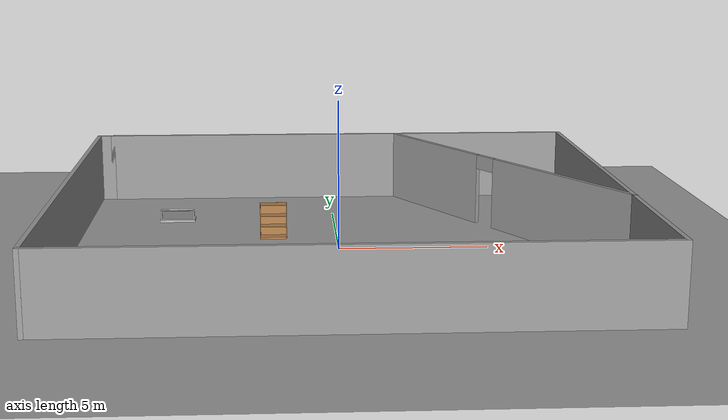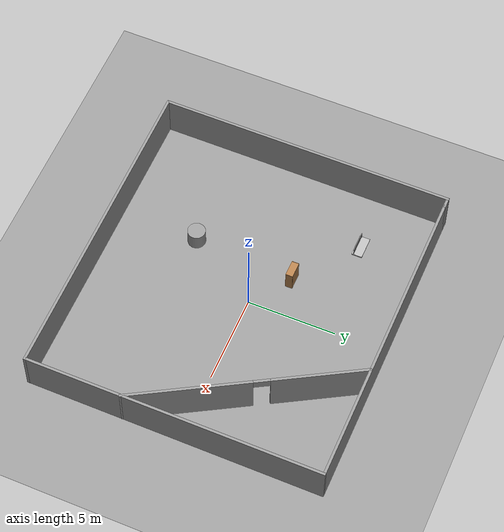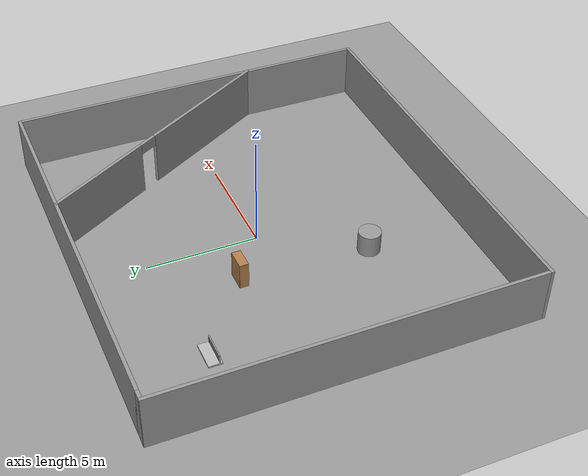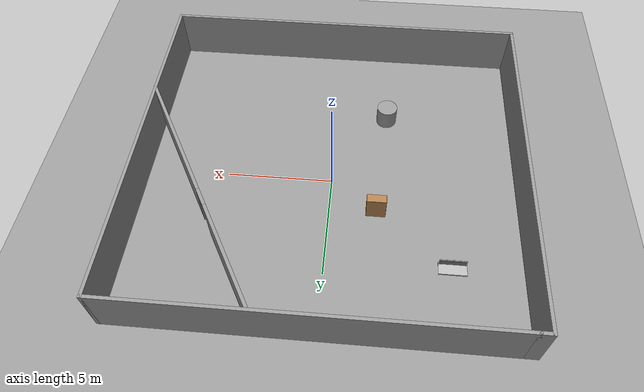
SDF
<sdf version="1.6">
 <world name="default">
  <model name="bookshelf">
   <static>1</static>
   <link name="link">
    <inertial><mass>1</mass></inertial>
    <collision name="back">
     <pose>0 0.005 0.6 0 -0 0</pose>
     <geometry><box><size>0.9 0.01 1.2</size></box></geometry>
    </collision>
    <visual name="visual1">
     <pose>0 0.005 0.6 0 -0 0</pose>
     <geometry><box><size>0.9 0.01 1.2</size></box></geometry>
     <material>
      <script><uri>file://media/materials/scripts/gazebo.material</uri><name>Gazebo/Wood</name></script>
     </material>
    </visual>
    <collision name="left_side">
     <pose>0.45 -0.195 0.6 0 -0 0</pose>
     <geometry><box><size>0.02 0.4 1.2</size></box></geometry>
    </collision>
    <visual name="visual2">
     <pose>0.45 -0.195 0.6 0 -0 0</pose>
     <geometry><box><size>0.02 0.4 1.2</size></box></geometry>
     <material>
      <script><uri>file://media/materials/scripts/gazebo.material</uri><name>Gazebo/Wood</name></script>
     </material>
    </visual>
    <collision name="right_side">
     <pose>-0.45 -0.195 0.6 0 -0 0</pose>
     <geometry><box><size>0.02 0.4 1.2</size></box></geometry>
    </collision>
    <visual name="visual3">
     <pose>-0.45 -0.195 0.6 0 -0 0</pose>
     <geometry><box><size>0.02 0.4 1.2</size></box></geometry>
     <material>
      <script><uri>file://media/materials/scripts/gazebo.material</uri><name>Gazebo/Wood</name></script>
     </material>
    </visual>
    <collision name="bottom">
     <pose>0 -0.195 0.03 0 -0 0</pose>
     <geometry><box><size>0.88 0.4 0.06</size></box></geometry>
    </collision>
    <visual name="visual4">
     <pose>0 -0.195 0.03 0 -0 0</pose>
     <geometry><box><size>0.88 0.4 0.06</size></box></geometry>
     <material>
      <script><uri>file://media/materials/scripts/gazebo.material</uri><name>Gazebo/Wood</name></script>
     </material>
    </visual>
    <collision name="top">
     <pose>0 -0.195 1.19 0 -0 0</pose>
     <geometry><box><size>0.88 0.4 0.02</size></box></geometry>
    </collision>
    <visual name="visual5">
     <pose>0 -0.195 1.19 0 -0 0</pose>
     <geometry><box><size>0.88 0.4 0.02</size></box></geometry>
     <material>
      <script><uri>file://media/materials/scripts/gazebo.material</uri><name>Gazebo/Wood</name></script>
     </material>
    </visual>
    <collision name="low_shelf">
     <pose>0 -0.195 0.43 0 -0 0</pose>
     <geometry><box><size>0.88 0.4 0.02</size></box></geometry>
    </collision>
    <visual name="visual6">
     <pose>0 -0.195 0.43 0 -0 0</pose>
     <geometry><box><size>0.88 0.4 0.02</size></box></geometry>
     <material>
      <script><uri>file://media/materials/scripts/gazebo.material</uri><name>Gazebo/Wood</name></script>
     </material>
    </visual>
    <collision name="high_shelf">
     <pose>0 -0.195 0.8 0 -0 0</pose>
     <geometry><box><size>0.88 0.4 0.02</size></box></geometry>
    </collision>
    <visual name="visual7">
     <pose>0 -0.195 0.8 0 -0 0</pose>
     <geometry><box><size>0.88 0.4 0.02</size></box></geometry>
     <material>
      <script><uri>file://media/materials/scripts/gazebo.material</uri><name>Gazebo/Wood</name></script>
     </material>
    </visual>
    <velocity_decay><linear>0</linear><angular>0</angular></velocity_decay>
   </link>
   <pose>-2.17453 1.82089 0 0 -0 0</pose>
  </model>
  <model name="ground_plane_0">
   <static>1</static>
   <link name="link">
    <collision name="collision">
     <geometry><plane><normal>0 0 1</normal><size>100 100</size></plane></geometry>
     <surface><friction><ode><mu>100</mu><mu2>50</mu2></ode></friction></surface>
    </collision>
    <visual name="visual">
     <cast_shadows>0</cast_shadows>
     <geometry><plane><normal>0 0 1</normal><size>100 100</size></plane></geometry>
     <material>
      <script><uri>file://media/materials/scripts/gazebo.material</uri><name>Gazebo/Grey</name></script>
     </material>
    </visual>
    <velocity_decay><linear>0</linear><angular>0</angular></velocity_decay>
   </link>
   <pose>0.497681 0 0 0 -0 0</pose>
  </model>
  <model name="unit_cylinder_1">
   <pose>-2.50226 -4.15205 0.49912 0 -0 0</pose>
   <link name="link">
    <inertial>
     <mass>1</mass>
     <inertia><ixx>1</ixx><ixy>0</ixy><ixz>0</ixz><iyy>1</iyy><iyz>0</iyz><izz>1</izz></inertia>
    </inertial>
    <collision name="collision">
     <geometry><cylinder><radius>0.5</radius><length>1</length></cylinder></geometry>
    </collision>
    <visual name="visual">
     <geometry><cylinder><radius>0.5</radius><length>1</length></cylinder></geometry>
     <material>
      <script><uri>file://media/materials/scripts/gazebo.material</uri><name>Gazebo/Grey</name></script>
     </material>
    </visual>
    <velocity_decay><linear>0</linear><angular>0</angular></velocity_decay>
   </link>
   <static>0</static>
  </model>
  <model name="Untitled">
   <pose>0.088338 -0.370511 0 0 -0 0</pose>
   <link name="Wall_10">
    <collision name="Wall_10_Collision">
     <geometry><box><size>18 0.15 2.5</size></box></geometry>
     <pose>0 0 1.25 0 -0 0</pose>
    </collision>
    <visual name="Wall_10_Visual">
     <pose>0 0 1.25 0 -0 0</pose>
     <geometry><box><size>18 0.15 2.5</size></box></geometry>
     <material>
      <script><uri>file://media/materials/scripts/gazebo.material</uri><name>Gazebo/Grey</name></script>
      <ambient>1 1 1 1</ambient>
     </material>
    </visual>
    <pose>-0.022117 -8.3 0 0 -0 3.14159</pose>
   </link>
   <link name="Wall_11">
    <collision name="Wall_11_Collision">
     <geometry><box><size>16.75 0.15 2.5</size></box></geometry>
     <pose>0 0 1.25 0 -0 0</pose>
    </collision>
    <visual name="Wall_11_Visual">
     <pose>0 0 1.25 0 -0 0</pose>
     <geometry><box><size>16.75 0.15 2.5</size></box></geometry>
     <material>
      <script><uri>file://media/materials/scripts/gazebo.material</uri><name>Gazebo/Grey</name></script>
      <ambient>1 1 1 1</ambient>
     </material>
    </visual>
    <pose>-8.94712 0 0 0 -0 1.5708</pose>
   </link>
   <link name="Wall_12">
    <collision name="Wall_12_Collision">
     <geometry><box><size>0.65 0.15 2.5</size></box></geometry>
     <pose>0 0 1.25 0 -0 0</pose>
    </collision>
    <visual name="Wall_12_Visual">
     <pose>0 0 1.25 0 -0 0</pose>
     <geometry><box><size>0.65 0.15 2.5</size></box></geometry>
     <material>
      <script><uri>file://media/materials/scripts/gazebo.material</uri><name>Gazebo/Grey</name></script>
      <ambient>1 1 1 1</ambient>
     </material>
    </visual>
    <pose>-8.69712 8.3 0 0 -0 0</pose>
   </link>
   <link name="Wall_14">
    <pose>5.70717 2.69556 0 0 0 -1.0472</pose>
    <visual name="Wall_14_Visual_0">
     <pose>-3.8832 0 1.25 0 -0 0</pose>
     <geometry><box><size>5.23359 0.15 2.5</size></box></geometry>
     <material>
      <script><uri>file://media/materials/scripts/gazebo.material</uri><name>Gazebo/Grey</name></script>
      <ambient>1 1 1 1</ambient>
     </material>
    </visual>
    <collision name="Wall_14_Collision_0">
     <geometry><box><size>5.23359 0.15 2.5</size></box></geometry>
     <pose>-3.8832 0 1.25 0 -0 0</pose>
    </collision>
    <visual name="Wall_14_Visual_1">
     <pose>3.06679 0 1.25 0 -0 0</pose>
     <geometry><box><size>6.86641 0.15 2.5</size></box></geometry>
     <material>
      <script><uri>file://media/materials/scripts/gazebo.material</uri><name>Gazebo/Grey</name></script>
      <ambient>1 1 1 1</ambient>
     </material>
    </visual>
    <collision name="Wall_14_Collision_1">
     <geometry><box><size>6.86641 0.15 2.5</size></box></geometry>
     <pose>3.06679 0 1.25 0 -0 0</pose>
    </collision>
    <visual name="Wall_14_Visual_2">
     <pose>-0.816409 0 2.25 0 -0 0</pose>
     <geometry><box><size>0.9 0.15 0.5</size></box></geometry>
     <material>
      <script><uri>file://media/materials/scripts/gazebo.material</uri><name>Gazebo/Grey</name></script>
      <ambient>1 1 1 1</ambient>
     </material>
    </visual>
    <collision name="Wall_14_Collision_2">
     <geometry><box><size>0.9 0.15 0.5</size></box></geometry>
     <pose>-0.816409 0 2.25 0 -0 0</pose>
    </collision>
   </link>
   <link name="Wall_8">
    <collision name="Wall_8_Collision">
     <geometry><box><size>17.5 0.15 2.5</size></box></geometry>
     <pose>0 0 1.25 0 -0 0</pose>
    </collision>
    <visual name="Wall_8_Visual">
     <pose>0 0 1.25 0 -0 0</pose>
     <geometry><box><size>17.5 0.15 2.5</size></box></geometry>
     <material>
      <script><uri>file://media/materials/scripts/gazebo.material</uri><name>Gazebo/Grey</name></script>
      <ambient>1 1 1 1</ambient>
     </material>
    </visual>
    <pose>0.227883 8.3 0 0 -0 0</pose>
   </link>
   <link name="Wall_9">
    <collision name="Wall_9_Collision">
     <geometry><box><size>16.75 0.15 2.5</size></box></geometry>
     <pose>0 0 1.25 0 -0 0</pose>
    </collision>
    <visual name="Wall_9_Visual">
     <pose>0 0 1.25 0 -0 0</pose>
     <geometry><box><size>16.75 0.15 2.5</size></box></geometry>
     <material>
      <script><uri>file://media/materials/scripts/gazebo.material</uri><name>Gazebo/Grey</name></script>
      <ambient>1 1 1 1</ambient>
     </material>
    </visual>
    <pose>8.90288 0 0 0 0 -1.5708</pose>
   </link>
   <static>1</static>
  </model>
  <model name="frc2016_lowbar">
   <link name="base">
    <inertial>
     <mass>50</mass>
     <inertia>
      <ixx>0.035543</ixx>
      <ixy>0</ixy>
      <ixz>0</ixz>
      <iyy>0.134412</iyy>
      <iyz>0</iyz>
      <izz>0.165376</izz>
     </inertia>
    </inertial>
    <visual name="platform">
     <pose>0 0 0.039065 0 -0 0</pose>
     <geometry><box><size>1.26 0.5996 0.07813</size></box></geometry>
    </visual>
    <collision name="platform">
     <pose>0 0 0.039065 0 -0 0</pose>
     <geometry><box><size>1.27 0.6096 0.07813</size></box></geometry>
    </collision>
    <visual name="right_column">
     <pose>-0.57845 -0.18464 0.26863 0 -0 0</pose>
     <geometry><cylinder><radius>0.0254</radius><length>0.381</length></cylinder></geometry>
    </visual>
    <collision name="right_column">
     <pose>-0.57845 -0.18464 0.26863 0 -0 0</pose>
     <geometry><cylinder><radius>0.0254</radius><length>0.381</length></cylinder></geometry>
    </collision>
    <visual name="left_column">
     <pose>0.57845 -0.18464 0.26863 0 -0 0</pose>
     <geometry><cylinder><radius>0.0254</radius><length>0.381</length></cylinder></geometry>
    </visual>
    <collision name="left_column">
     <pose>0.57845 -0.18464 0.26863 0 -0 0</pose>
     <geometry><cylinder><radius>0.0254</radius><length>0.381</length></cylinder></geometry>
    </collision>
    <visual name="horizontal">
     <pose>0 -0.18464 0.43556 0 1.5707 0</pose>
     <geometry><cylinder><radius>0.0254</radius><length>1.2018</length></cylinder></geometry>
    </visual>
    <collision name="horizontal">
     <pose>0 -0.18464 0.43556 0 1.5707 0</pose>
     <geometry><cylinder><radius>0.0254</radius><length>1.2018</length></cylinder></geometry>
    </collision>
   </link>
   <link name="wall">
    <pose>0 -0.1778 0.24323 0 -0 0</pose>
    <inertial>
     <mass>1</mass>
     <inertia>
      <ixx>0.00774528</ixx>
      <ixy>0</ixy>
      <ixz>0</ixz>
      <iyy>0.116613</iyy>
      <iyz>0</iyz>
      <izz>0.108874</izz>
     </inertia>
    </inertial>
    <visual name="visual">
     <geometry><box><size>1.1176 0.00635 0.3</size></box></geometry>
     <material><ambient>0.46 0.46 0.46 1</ambient><diffuse>0.46 0.46 0.46 1</diffuse></material>
    </visual>
    <collision name="collision"><geometry><box><size>1.143 0.00635 0.3</size></box></geometry></collision>
   </link>
   <joint name="bar_joint" type="revolute">
    <pose>0 0 0.36378 0 -0 0</pose>
    <parent>base</parent>
    <child>wall</child>
    <axis>
     <xyz>1 0 0</xyz>
     <limit><lower>-1.5707</lower><upper>1.5707</upper></limit>
     <use_parent_model_frame>0</use_parent_model_frame>
     <dynamics><spring_reference>0</spring_reference><spring_stiffness>0</spring_stiffness></dynamics>
    </axis>
   </joint>
   <pose>-5.64795 4.27614 -0.000214 0.001257 4.2e-05 -0.000161</pose>
  </model>
 </world>
</sdf>
